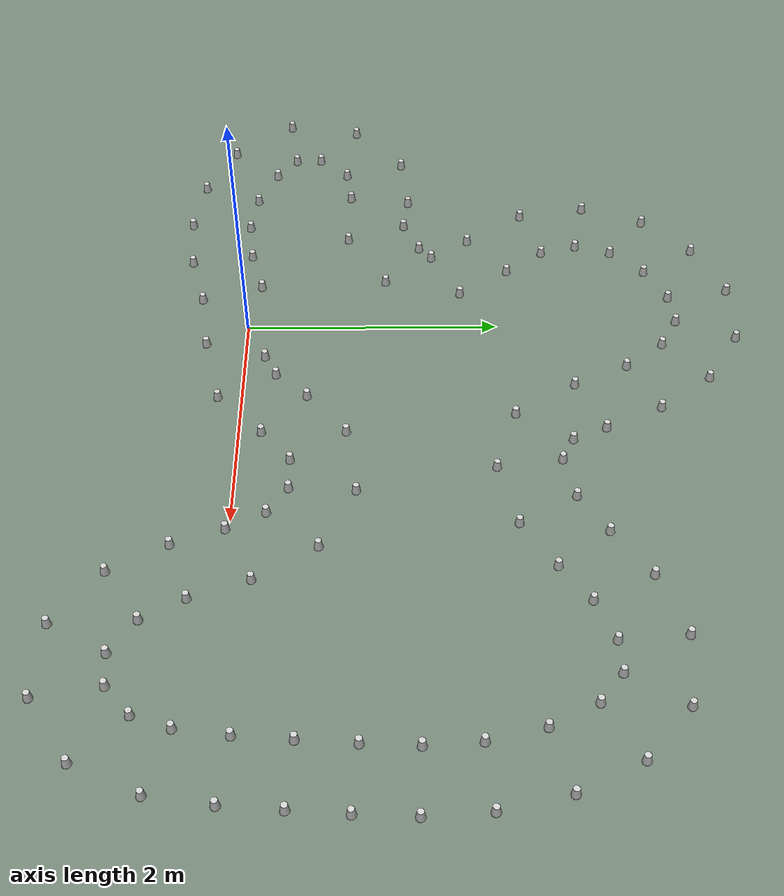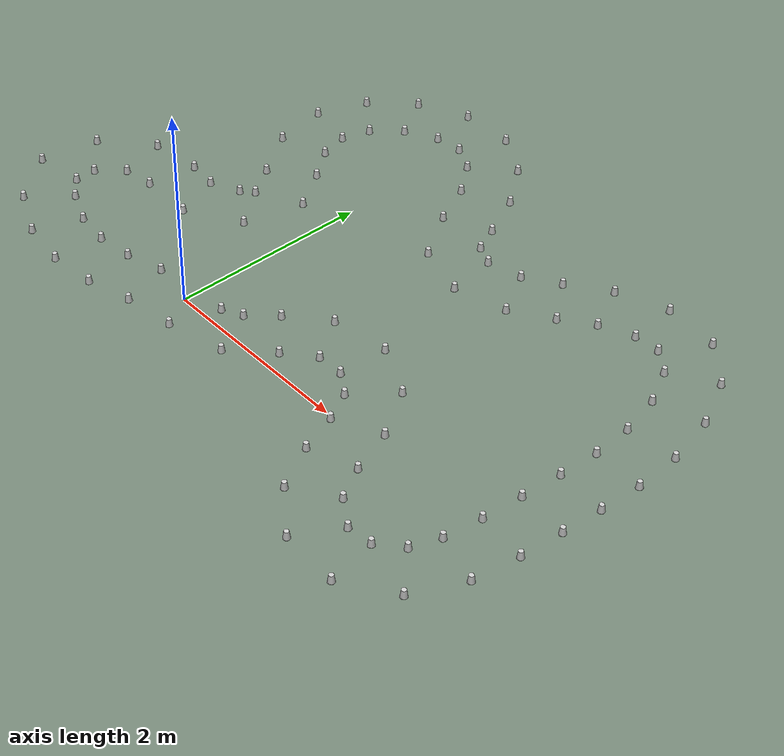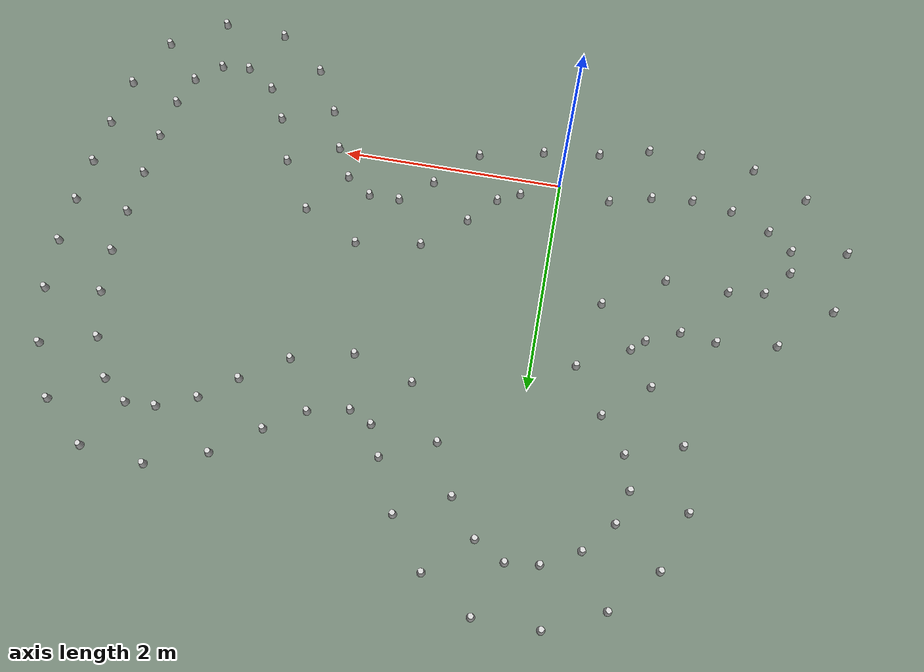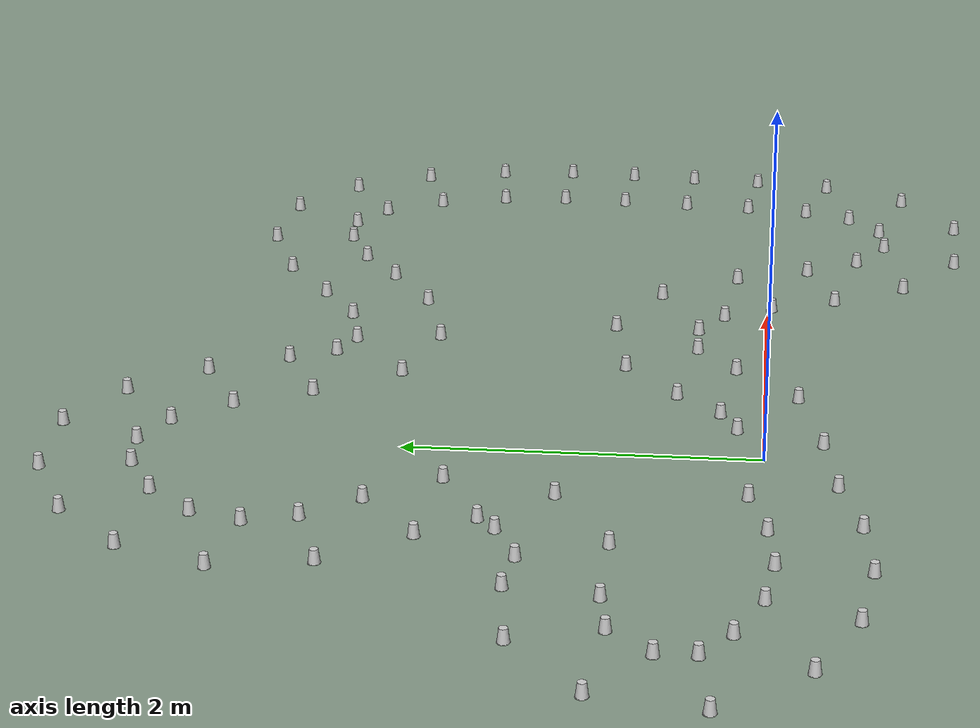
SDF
<?xml version='1.0' encoding='UTF-8'?>
<sdf version="1.4">
  <model name="some track">
    <include>
      <uri>model://cone_yellow</uri>
      <pose>0.19440893139826076 -0.32236749888189586 0 0 0 0</pose>
      <name>cone_right_0</name>
    </include>
    <include>
      <uri>model://cone_yellow</uri>
      <pose>0.7801127865941516 -0.18727794884423352 0 0 0 0</pose>
      <name>cone_right_1</name>
    </include>
    <include>
      <uri>model://cone_yellow</uri>
      <pose>1.146533370649107 0.1730454350416963 0 0 0 0</pose>
      <name>cone_right_2</name>
    </include>
    <include>
      <uri>model://cone_yellow</uri>
      <pose>1.4263556784695397 0.40518478134672253 0 0 0 0</pose>
      <name>cone_right_3</name>
    </include>
    <include>
      <uri>model://cone_yellow</uri>
      <pose>1.7030777531460513 0.40769065226008017 0 0 0 0</pose>
      <name>cone_right_4</name>
    </include>
    <include>
      <uri>model://cone_yellow</uri>
      <pose>1.9319208618935568 0.25697034380323713 0 0 0 0</pose>
      <name>cone_right_5</name>
    </include>
    <include>
      <uri>model://cone_yellow</uri>
      <pose>2.0824806590898133 -0.0285836036670217 0 0 0 0</pose>
      <name>cone_right_6</name>
    </include>
    <include>
      <uri>model://cone_yellow</uri>
      <pose>2.2198354524306527 -0.4153126558821486 0 0 0 0</pose>
      <name>cone_right_7</name>
    </include>
    <include>
      <uri>model://cone_yellow</uri>
      <pose>2.4557459932602828 -0.845487741118921 0 0 0 0</pose>
      <name>cone_right_8</name>
    </include>
    <include>
      <uri>model://cone_yellow</uri>
      <pose>2.896678208842463 -1.1851802446233155 0 0 0 0</pose>
      <name>cone_right_9</name>
    </include>
    <include>
      <uri>model://cone_yellow</uri>
      <pose>3.4861259094561645 -1.2176530758124944 0 0 0 0</pose>
      <name>cone_right_10</name>
    </include>
    <include>
      <uri>model://cone_yellow</uri>
      <pose>3.972142986267739 -0.8921185600054145 0 0 0 0</pose>
      <name>cone_right_11</name>
    </include>
    <include>
      <uri>model://cone_yellow</uri>
      <pose>4.203753341792428 -0.3925462859773744 0 0 0 0</pose>
      <name>cone_right_12</name>
    </include>
    <include>
      <uri>model://cone_yellow</uri>
      <pose>4.274572197508164 0.07810426393481221 0 0 0 0</pose>
      <name>cone_right_13</name>
    </include>
    <include>
      <uri>model://cone_yellow</uri>
      <pose>4.308875220803748 0.5145730793358901 0 0 0 0</pose>
      <name>cone_right_14</name>
    </include>
    <include>
      <uri>model://cone_yellow</uri>
      <pose>4.338931521541434 0.9301115469840259 0 0 0 0</pose>
      <name>cone_right_15</name>
    </include>
    <include>
      <uri>model://cone_yellow</uri>
      <pose>4.358449960362373 1.3599908281216184 0 0 0 0</pose>
      <name>cone_right_16</name>
    </include>
    <include>
      <uri>model://cone_yellow</uri>
      <pose>4.328131334942479 1.830210425209798 0 0 0 0</pose>
      <name>cone_right_17</name>
    </include>
    <include>
      <uri>model://cone_yellow</uri>
      <pose>4.208235865632909 2.3363830958283156 0 0 0 0</pose>
      <name>cone_right_18</name>
    </include>
    <include>
      <uri>model://cone_yellow</uri>
      <pose>3.9737470219172755 2.8067915763381364 0 0 0 0</pose>
      <name>cone_right_19</name>
    </include>
    <include>
      <uri>model://cone_yellow</uri>
      <pose>3.5756919231773305 3.148122274992592 0 0 0 0</pose>
      <name>cone_right_20</name>
    </include>
    <include>
      <uri>model://cone_yellow</uri>
      <pose>3.0136462284693737 3.206002291394916 0 0 0 0</pose>
      <name>cone_right_21</name>
    </include>
    <include>
      <uri>model://cone_yellow</uri>
      <pose>2.506156940587223 3.0188882148602674 0 0 0 0</pose>
      <name>cone_right_22</name>
    </include>
    <include>
      <uri>model://cone_yellow</uri>
      <pose>2.1175318091047415 2.739687437665315 0 0 0 0</pose>
      <name>cone_right_23</name>
    </include>
    <include>
      <uri>model://cone_yellow</uri>
      <pose>1.7899190878752484 2.525760768908142 0 0 0 0</pose>
      <name>cone_right_24</name>
    </include>
    <include>
      <uri>model://cone_yellow</uri>
      <pose>1.435635647394046 2.4471453191183175 0 0 0 0</pose>
      <name>cone_right_25</name>
    </include>
    <include>
      <uri>model://cone_yellow</uri>
      <pose>1.23629539581722 2.5405103184290185 0 0 0 0</pose>
      <name>cone_right_26</name>
    </include>
    <include>
      <uri>model://cone_yellow</uri>
      <pose>1.1170773786021537 2.8037454820459398 0 0 0 0</pose>
      <name>cone_right_27</name>
    </include>
    <include>
      <uri>model://cone_yellow</uri>
      <pose>0.9089011980055609 3.2462648616870293 0 0 0 0</pose>
      <name>cone_right_28</name>
    </include>
    <include>
      <uri>model://cone_yellow</uri>
      <pose>0.5950770180744451 3.6586869704258924 0 0 0 0</pose>
      <name>cone_right_29</name>
    </include>
    <include>
      <uri>model://cone_yellow</uri>
      <pose>0.1511984833487146 3.925682308831616 0 0 0 0</pose>
      <name>cone_right_30</name>
    </include>
    <include>
      <uri>model://cone_yellow</uri>
      <pose>-0.4003657454018216 3.9249109262473474 0 0 0 0</pose>
      <name>cone_right_31</name>
    </include>
    <include>
      <uri>model://cone_yellow</uri>
      <pose>-0.8933600072485627 3.692059282284099 0 0 0 0</pose>
      <name>cone_right_32</name>
    </include>
    <include>
      <uri>model://cone_yellow</uri>
      <pose>-1.2652625229724066 3.3111151095271114 0 0 0 0</pose>
      <name>cone_right_33</name>
    </include>
    <include>
      <uri>model://cone_yellow</uri>
      <pose>-1.4453010945677194 2.808579924969961 0 0 0 0</pose>
      <name>cone_right_34</name>
    </include>
    <include>
      <uri>model://cone_yellow</uri>
      <pose>-1.3519047386697007 2.2630899092856 0 0 0 0</pose>
      <name>cone_right_35</name>
    </include>
    <include>
      <uri>model://cone_yellow</uri>
      <pose>-1.0324996598672638 1.7970895430406701 0 0 0 0</pose>
      <name>cone_right_36</name>
    </include>
    <include>
      <uri>model://cone_yellow</uri>
      <pose>-0.8244694400275135 1.4891670398461077 0 0 0 0</pose>
      <name>cone_right_37</name>
    </include>
    <include>
      <uri>model://cone_yellow</uri>
      <pose>-0.939634014532607 1.3871422670099578 0 0 0 0</pose>
      <name>cone_right_38</name>
    </include>
    <include>
      <uri>model://cone_yellow</uri>
      <pose>-1.2316019940957292 1.2553304447530202 0 0 0 0</pose>
      <name>cone_right_39</name>
    </include>
    <include>
      <uri>model://cone_yellow</uri>
      <pose>-1.540382504109351 1.293231361277136 0 0 0 0</pose>
      <name>cone_right_40</name>
    </include>
    <include>
      <uri>model://cone_yellow</uri>
      <pose>-2.064741010182569 1.2338428143713325 0 0 0 0</pose>
      <name>cone_right_41</name>
    </include>
    <include>
      <uri>model://cone_yellow</uri>
      <pose>-2.530359939189817 0.8246773623305652 0 0 0 0</pose>
      <name>cone_right_42</name>
    </include>
    <include>
      <uri>model://cone_yellow</uri>
      <pose>-2.628929074516653 0.23116906947551458 0 0 0 0</pose>
      <name>cone_right_43</name>
    </include>
    <include>
      <uri>model://cone_yellow</uri>
      <pose>-2.2394055019177532 -0.2511936487688071 0 0 0 0</pose>
      <name>cone_right_44</name>
    </include>
    <include>
      <uri>model://cone_yellow</uri>
      <pose>-1.7503930239123842 -0.4823996346021438 0 0 0 0</pose>
      <name>cone_right_45</name>
    </include>
    <include>
      <uri>model://cone_yellow</uri>
      <pose>-1.2553432765383714 -0.5576383247020719 0 0 0 0</pose>
      <name>cone_right_46</name>
    </include>
    <include>
      <uri>model://cone_yellow</uri>
      <pose>-0.7740570637112139 -0.5154382033173671 0 0 0 0</pose>
      <name>cone_right_47</name>
    </include>
    <include>
      <uri>model://cone_yellow</uri>
      <pose>-0.3207951161363214 -0.39457218471202876 0 0 0 0</pose>
      <name>cone_right_48</name>
    </include>
    <include>
      <uri>model://cone_blue</uri>
      <pose>0.34304806317010494 0.15502794360379896 0 0 0 0</pose>
      <name>cone_left_0</name>
    </include>
    <include>
      <uri>model://cone_blue</uri>
      <pose>0.541715046024631 0.25222918112221837 0 0 0 0</pose>
      <name>cone_left_1</name>
    </include>
    <include>
      <uri>model://cone_blue</uri>
      <pose>0.7731273589375834 0.5055630291892745 0 0 0 0</pose>
      <name>cone_left_2</name>
    </include>
    <include>
      <uri>model://cone_blue</uri>
      <pose>1.1456235194416409 0.8189352555307824 0 0 0 0</pose>
      <name>cone_left_3</name>
    </include>
    <include>
      <uri>model://cone_blue</uri>
      <pose>1.7273388733617625 0.9071017034452525 0 0 0 0</pose>
      <name>cone_left_4</name>
    </include>
    <include>
      <uri>model://cone_blue</uri>
      <pose>2.2422241245922154 0.6490314170540348 0 0 0 0</pose>
      <name>cone_left_5</name>
    </include>
    <include>
      <uri>model://cone_blue</uri>
      <pose>2.533406850276915 0.18743854820980121 0 0 0 0</pose>
      <name>cone_left_6</name>
    </include>
    <include>
      <uri>model://cone_blue</uri>
      <pose>2.6919179346519755 -0.25057610869314595 0 0 0 0</pose>
      <name>cone_left_7</name>
    </include>
    <include>
      <uri>model://cone_blue</uri>
      <pose>2.8697377616949784 -0.5651115372992794 0 0 0 0</pose>
      <name>cone_left_8</name>
    </include>
    <include>
      <uri>model://cone_blue</uri>
      <pose>3.1409375079948036 -0.748903503577443 0 0 0 0</pose>
      <name>cone_left_9</name>
    </include>
    <include>
      <uri>model://cone_blue</uri>
      <pose>3.3995775570899576 -0.7252006591236381 0 0 0 0</pose>
      <name>cone_left_10</name>
    </include>
    <include>
      <uri>model://cone_blue</uri>
      <pose>3.6237158889243903 -0.5335121492472004 0 0 0 0</pose>
      <name>cone_left_11</name>
    </include>
    <include>
      <uri>model://cone_blue</uri>
      <pose>3.72478422476105 -0.24905905682376073 0 0 0 0</pose>
      <name>cone_left_12</name>
    </include>
    <include>
      <uri>model://cone_blue</uri>
      <pose>3.7780321319281587 0.1368236242327982 0 0 0 0</pose>
      <name>cone_left_13</name>
    </include>
    <include>
      <uri>model://cone_blue</uri>
      <pose>3.810092465673437 0.5494408751454333 0 0 0 0</pose>
      <name>cone_left_14</name>
    </include>
    <include>
      <uri>model://cone_blue</uri>
      <pose>3.840351643600846 0.9677692860657666 0 0 0 0</pose>
      <name>cone_left_15</name>
    </include>
    <include>
      <uri>model://cone_blue</uri>
      <pose>3.858640560929468 1.3737953287833322 0 0 0 0</pose>
      <name>cone_left_16</name>
    </include>
    <include>
      <uri>model://cone_blue</uri>
      <pose>3.830759543999373 1.7790117770435876 0 0 0 0</pose>
      <name>cone_left_17</name>
    </include>
    <include>
      <uri>model://cone_blue</uri>
      <pose>3.72816194055946 2.196636802623188 0 0 0 0</pose>
      <name>cone_left_18</name>
    </include>
    <include>
      <uri>model://cone_blue</uri>
      <pose>3.5462186626410253 2.5475243358032826 0 0 0 0</pose>
      <name>cone_left_19</name>
    </include>
    <include>
      <uri>model://cone_blue</uri>
      <pose>3.317344275374484 2.7200375954317177 0 0 0 0</pose>
      <name>cone_left_20</name>
    </include>
    <include>
      <uri>model://cone_blue</uri>
      <pose>3.0548415314354793 2.707702234186881 0 0 0 0</pose>
      <name>cone_left_21</name>
    </include>
    <include>
      <uri>model://cone_blue</uri>
      <pose>2.725130316142711 2.569387757910739 0 0 0 0</pose>
      <name>cone_left_22</name>
    </include>
    <include>
      <uri>model://cone_blue</uri>
      <pose>2.426744828945345 2.3467659335947766 0 0 0 0</pose>
      <name>cone_left_23</name>
    </include>
    <include>
      <uri>model://cone_blue</uri>
      <pose>2.0387242267984473 2.092060408238004 0 0 0 0</pose>
      <name>cone_left_24</name>
    </include>
    <include>
      <uri>model://cone_blue</uri>
      <pose>1.5056228731374923 1.9520677613228383 0 0 0 0</pose>
      <name>cone_left_25</name>
    </include>
    <include>
      <uri>model://cone_blue</uri>
      <pose>0.970552663670917 2.1169766122007916 0 0 0 0</pose>
      <name>cone_left_26</name>
    </include>
    <include>
      <uri>model://cone_blue</uri>
      <pose>0.6637712773138716 2.5927630691892802 0 0 0 0</pose>
      <name>cone_left_27</name>
    </include>
    <include>
      <uri>model://cone_blue</uri>
      <pose>0.46436598891593606 3.017379633068747 0 0 0 0</pose>
      <name>cone_left_28</name>
    </include>
    <include>
      <uri>model://cone_blue</uri>
      <pose>0.22289407212801376 3.3248009797844227 0 0 0 0</pose>
      <name>cone_left_29</name>
    </include>
    <include>
      <uri>model://cone_blue</uri>
      <pose>-0.0395367278463017 3.4634917862001013 0 0 0 0</pose>
      <name>cone_left_30</name>
    </include>
    <include>
      <uri>model://cone_blue</uri>
      <pose>-0.3183292984094979 3.4316868175859034 0 0 0 0</pose>
      <name>cone_left_31</name>
    </include>
    <include>
      <uri>model://cone_blue</uri>
      <pose>-0.6333071954525865 3.265008307484829 0 0 0 0</pose>
      <name>cone_left_32</name>
    </include>
    <include>
      <uri>model://cone_blue</uri>
      <pose>-0.8715802201671403 3.002871302682687 0 0 0 0</pose>
      <name>cone_left_33</name>
    </include>
    <include>
      <uri>model://cone_blue</uri>
      <pose>-0.9544005797509463 2.713623700568255 0 0 0 0</pose>
      <name>cone_left_34</name>
    </include>
    <include>
      <uri>model://cone_blue</uri>
      <pose>-0.8772629119117806 2.420300393325006 0 0 0 0</pose>
      <name>cone_left_35</name>
    </include>
    <include>
      <uri>model://cone_blue</uri>
      <pose>-0.6486327973298152 2.117474049291605 0 0 0 0</pose>
      <name>cone_left_36</name>
    </include>
    <include>
      <uri>model://cone_blue</uri>
      <pose>-0.3806933595095835 1.719520660091468 0 0 0 0</pose>
      <name>cone_left_37</name>
    </include>
    <include>
      <uri>model://cone_blue</uri>
      <pose>-0.5257496930794299 1.1066074769121108 0 0 0 0</pose>
      <name>cone_left_38</name>
    </include>
    <include>
      <uri>model://cone_blue</uri>
      <pose>-1.05777099263155 0.7865204801298689 0 0 0 0</pose>
      <name>cone_left_39</name>
    </include>
    <include>
      <uri>model://cone_blue</uri>
      <pose>-1.6104181783128395 0.7981606548736335 0 0 0 0</pose>
      <name>cone_left_40</name>
    </include>
    <include>
      <uri>model://cone_blue</uri>
      <pose>-1.9233294532435818 0.7542567724934526 0 0 0 0</pose>
      <name>cone_left_41</name>
    </include>
    <include>
      <uri>model://cone_blue</uri>
      <pose>-2.138321336515372 0.5143457106849929 0 0 0 0</pose>
      <name>cone_left_42</name>
    </include>
    <include>
      <uri>model://cone_blue</uri>
      <pose>-2.1334410039723184 0.2981882603707508 0 0 0 0</pose>
      <name>cone_left_43</name>
    </include>
    <include>
      <uri>model://cone_blue</uri>
      <pose>-1.9232534247642743 0.13616647322562414 0 0 0 0</pose>
      <name>cone_left_44</name>
    </include>
    <include>
      <uri>model://cone_blue</uri>
      <pose>-1.5785122151095907 -0.012871160955126859 0 0 0 0</pose>
      <name>cone_left_45</name>
    </include>
    <include>
      <uri>model://cone_blue</uri>
      <pose>-1.2183072628292935 -0.05901187766126259 0 0 0 0</pose>
      <name>cone_left_46</name>
    </include>
    <include>
      <uri>model://cone_blue</uri>
      <pose>-0.8460937654391261 -0.020654701567193734 0 0 0 0</pose>
      <name>cone_left_47</name>
    </include>
    <include>
      <uri>model://cone_blue</uri>
      <pose>-0.4680068979770162 0.08326533085920351 0 0 0 0</pose>
      <name>cone_left_48</name>
    </include>

  </model>
</sdf>

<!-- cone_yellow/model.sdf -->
<sdf version='1.4'>
  <model name="cone_yellow">
    <link name="link">
    <collision name="collision"><geometry><box><size> 0.05 0.05 0.01</size>
             </box></geometry></collision>
      <visual name="visual">
        <geometry>
          <mesh>
            <uri>model://cup.dae</uri>
            <scale>1 1 1</scale>
          </mesh>
        </geometry>
        <material>
            <script>
              <uri>model://cone_yellow/materials/scripts</uri>
              <uri>model://cone_yellow/materials/textures</uri>
              <name>cone_yellow/Image</name>
            </script>
        </material>
      </visual>
    </link>
  </model>
</sdf>

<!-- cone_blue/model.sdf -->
<sdf version='1.4'>
  <model name="cone_blue">
    <link name="link">
    <collision name="collision"><geometry><box><size> 0.05 0.05 0.01</size>
             </box></geometry></collision>
      <visual name="visual">
        <geometry>
          <mesh>
            <uri>model://cup.dae</uri>
            <scale>1 1 1</scale>
          </mesh>
        </geometry>
        <material>
            <script>
              <uri>model://cone_blue/materials/scripts</uri>
              <uri>model://cone_blue/materials/textures</uri>
              <name>cone_blue/Image</name>
            </script>
        </material>
      </visual>
    </link>
  </model>
</sdf>
